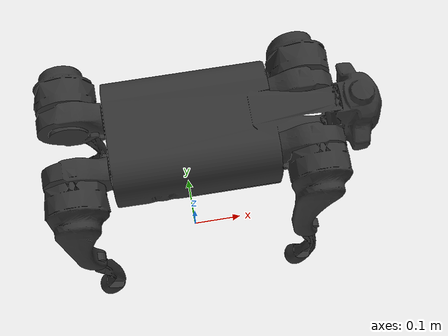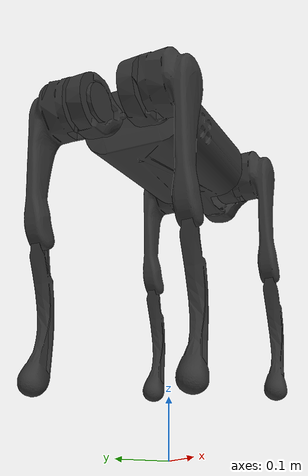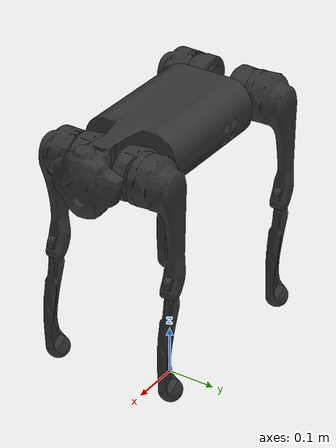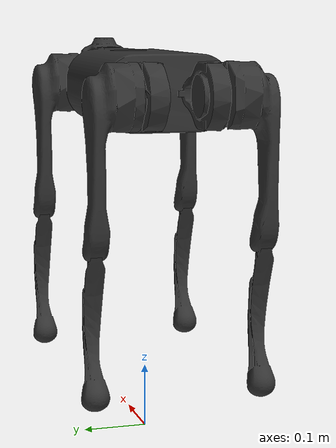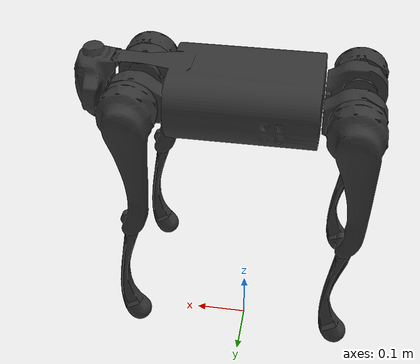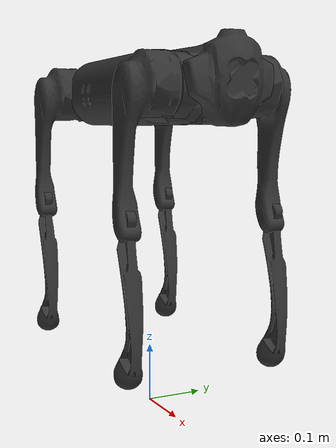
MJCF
<mujoco model="go1">
  <compiler angle="radian" autolimits="true"/>

  <option timestep="0.005" integrator="Euler" iterations="60">
    <flag eulerdamp="disable"/>
  </option>

  <custom>
    <numeric data="30" name="max_contact_points"/>
    <numeric data="12" name="max_geom_pairs"/>
  </custom>

  <default>
    <default class="go1">
      <geom condim="1"/>
      <joint axis="0 1 0" armature="0.005" damping="0.5"/>
      <default class="abduction">
        <joint axis="1 0 0" range="-0.863 0.863" frictionloss="0.3"/>
      </default>
      <default class="hip">
        <joint range="-0.686 4.501" frictionloss="0.3"/>
      </default>
      <default class="knee">
        <joint range="-2.818 -0.888" frictionloss="1.0"/>
        <position forcerange="-35.55 35.55"/>
      </default>
      <default class="visual">
        <geom type="mesh" contype="0" conaffinity="0" group="2" material="dark"/>
      </default>
      <default class="collision">
        <geom group="3" type="capsule"/>
        <default class="hip_left1">
          <geom size="0.046 0.02" pos="0 0.045 0" quat="1 1 0 0" type="cylinder"/>
        </default>
        <default class="hip_left2">
          <geom size="0.031 0.02" pos="0 0.065 0" quat="1 1 0 0" type="cylinder"/>
        </default>
        <default class="hip_left3">
          <geom size="0.046 0.02" quat="1 1 0 0" type="cylinder"/>
        </default>
        <default class="hip_right1">
          <geom size="0.046 0.02" pos="0 -0.045 0" quat="1 1 0 0" type="cylinder"/>
        </default>
        <default class="hip_right2">
          <geom size="0.031 0.02" pos="0 -0.065 0" quat="1 1 0 0" type="cylinder"/>
        </default>
        <default class="hip_right3">
          <geom size="0.046 0.02" quat="1 1 0 0" type="cylinder"/>
        </default>
        <default class="thigh1">
          <geom size="0.015" fromto="-0.02 0 0 -0.02 0 -0.16"/>
        </default>
        <default class="thigh2">
          <geom size="0.015" fromto="0 0 0 -0.02 0 -0.1"/>
        </default>
        <default class="thigh3">
          <geom size="0.015" fromto="-0.02 0 -0.16 0 0 -0.2"/>
        </default>
        <default class="calf1">
          <geom size="0.01" fromto="0 0 0 0.02 0 -0.13"/>
        </default>
        <default class="calf2">
          <geom size="0.01" fromto="0.02 0 -0.13 0 0 -0.2"/>
        </default>
        <default class="foot">
          <geom type="sphere" size="0.023" pos="0 0 -0.213" solimp="0.9 .99 0.001" priority="10" condim="3"/>
        </default>
      </default>
    </default>
  </default>

  <asset>
    <material name="dark" rgba="0.2 0.2 0.2 1"/>
    <mesh class="go1" file="../go1/assets/trunk.stl"/>
    <mesh class="go1" file="../go1/assets/hip.stl"/>
    <mesh class="go1" file="../go1/assets/thigh_mirror.stl"/>
    <mesh class="go1" file="../go1/assets/calf.stl"/>
    <mesh class="go1" file="../go1/assets/thigh.stl"/>
  </asset>

  <worldbody>
    <light name="spotlight" mode="targetbodycom" target="trunk" pos="3 0 4"/>
    <body name="trunk" pos="0 0 0.545" childclass="go1">
      <camera name="track" pos="0.846 -1.3 0.316" xyaxes="0.866 0.500 0.000 -0.171 0.296 0.940" mode="trackcom"/>
      <camera name="top" pos="-1 0 1" xyaxes="0 -1 0 0.7 0 0.7" mode="trackcom"/>
      <camera name="side" pos="0 -2 1" xyaxes="1 0 0 0 1 2" mode="trackcom"/>
      <camera name="back" pos="-2.4 0 0.8" target="trunk" mode="targetbody" trackposspeed="2" trackrotspeed="10"/>
      <site name="head" pos="0.3 0 0" rgba="1 0 0 1" size="0.02" group="5"/>
      <inertial pos="0.0223 0.002 -0.0005" quat="-0.00342088 0.705204 0.000106698 0.708996" mass="5.204"
        diaginertia="0.0716565 0.0630105 0.0168101"/>
      <freejoint/>
      <geom class="visual" mesh="trunk"/>
      <geom name='trunk' class="collision" quat="1 0 0 0" pos="0.24 0 0" size="0.05 0.05 0.05" type="box"/>
      <site name="imu" pos="-0.01592 -0.06659 -0.00617" group="5"/>
      <body name="FR_hip" pos="0.1881 -0.04675 0">
        <inertial pos="-0.0049166 0.00762615 -8.865e-05" quat="0.507341 0.514169 0.495027 0.482891" mass="0.68"
          diaginertia="0.000734064 0.000468438 0.000398719"/>
        <joint class="abduction" name="FR_hip_joint"/>
        <geom class="visual" mesh="hip" quat="1 0 0 0"/>
        <body name="FR_thigh" pos="0 -0.08 0">
          <inertial pos="-0.00304722 0.019315 -0.0305004" quat="0.65243 -0.0272313 0.0775126 0.753383" mass="1.009"
            diaginertia="0.00478717 0.00460903 0.000709268"/>
          <joint class="hip" name="FR_thigh_joint"/>
          <geom class="visual" mesh="thigh_mirror"/>
          <body name="FR_calf" pos="0 0 -0.213">
            <inertial pos="0.00429862 0.000976676 -0.146197" quat="0.691246 0.00357467 0.00511118 0.722592"
              mass="0.195862" diaginertia="0.00149767 0.00148468 3.58427e-05"/>
            <joint class="knee" name="FR_calf_joint"/>
            <geom class="visual" mesh="calf"/>
            <geom name="FR" class="foot"/>
            <site name="FR" pos="0 0 -0.213" type="sphere" size="0.023" group="5"/>
          </body>
        </body>
      </body>
      <body name="FL_hip" pos="0.1881 0.04675 0">
        <inertial pos="-0.0049166 -0.00762615 -8.865e-05" quat="0.482891 0.495027 0.514169 0.507341" mass="0.68"
          diaginertia="0.000734064 0.000468438 0.000398719"/>
        <joint class="abduction" name="FL_hip_joint"/>
        <geom class="visual" mesh="hip"/>
        <body name="FL_thigh" pos="0 0.08 0">
          <inertial pos="-0.00304722 -0.019315 -0.0305004" quat="0.753383 0.0775126 -0.0272313 0.65243" mass="1.009"
            diaginertia="0.00478717 0.00460903 0.000709268"/>
          <joint class="hip" name="FL_thigh_joint"/>
          <geom class="visual" mesh="thigh"/>
          <body name="FL_calf" pos="0 0 -0.213">
            <inertial pos="0.00429862 0.000976676 -0.146197" quat="0.691246 0.00357467 0.00511118 0.722592"
              mass="0.195862" diaginertia="0.00149767 0.00148468 3.58427e-05"/>
            <joint class="knee" name="FL_calf_joint"/>
            <geom class="visual" mesh="calf"/>
            <geom name="FL" class="foot"/>
            <site name="FL" pos="0 0 -0.213" type="sphere" size="0.023" group="5"/>
          </body>
        </body>
      </body>
      <body name="RR_hip" pos="-0.1881 -0.04675 0">
        <inertial pos="0.0049166 0.00762615 -8.865e-05" quat="0.495027 0.482891 0.507341 0.514169" mass="0.68"
          diaginertia="0.000734064 0.000468438 0.000398719"/>
        <joint class="abduction" name="RR_hip_joint"/>
        <geom class="visual" quat="0 0 0 -1" mesh="hip"/>
        <body name="RR_thigh" pos="0 -0.08 0">
          <inertial pos="-0.00304722 0.019315 -0.0305004" quat="0.65243 -0.0272313 0.0775126 0.753383" mass="1.009"
            diaginertia="0.00478717 0.00460903 0.000709268"/>
          <joint class="hip" name="RR_thigh_joint"/>
          <geom class="visual" mesh="thigh_mirror"/>
          <body name="RR_calf" pos="0 0 -0.213">
            <inertial pos="0.00429862 0.000976676 -0.146197" quat="0.691246 0.00357467 0.00511118 0.722592"
              mass="0.195862" diaginertia="0.00149767 0.00148468 3.58427e-05"/>
            <joint class="knee" name="RR_calf_joint"/>
            <geom class="visual" mesh="calf"/>
            <geom name="RR" class="foot"/>
            <site name="RR" pos="0 0 -0.213" type="sphere" size="0.023" group="5"/>
          </body>
        </body>
      </body>
      <body name="RL_hip" pos="-0.1881 0.04675 0">
        <inertial pos="0.0049166 -0.00762615 -8.865e-05" quat="0.514169 0.507341 0.482891 0.495027" mass="0.68"
          diaginertia="0.000734064 0.000468438 0.000398719"/>
        <joint class="abduction" name="RL_hip_joint"/>
        <geom class="visual" quat="0 0 1 0" mesh="hip"/>
        <body name="RL_thigh" pos="0 0.08 0">
          <inertial pos="-0.00304722 -0.019315 -0.0305004" quat="0.753383 0.0775126 -0.0272313 0.65243" mass="1.009"
            diaginertia="0.00478717 0.00460903 0.000709268"/>
          <joint class="hip" name="RL_thigh_joint"/>
          <geom class="visual" mesh="thigh"/>
          <body name="RL_calf" pos="0 0 -0.213">
            <inertial pos="0.00429862 0.000976676 -0.146197" quat="0.691246 0.00357467 0.00511118 0.722592"
              mass="0.195862" diaginertia="0.00149767 0.00148468 3.58427e-05"/>
            <joint class="knee" name="RL_calf_joint"/>
            <geom class="visual" mesh="calf"/>
            <geom name="RL" class="foot"/>
            <site name="RL" pos="0 0 -0.213" type="sphere" size="0.023" group="5"/>
          </body>
        </body>
      </body>
    </body>
  </worldbody>

  <actuator>
    <motor class="abduction" name="FR_hip" joint="FR_hip_joint"  ctrllimited="true" ctrlrange="-23.7 23.7"/>
    <motor class="hip" name="FR_thigh" joint="FR_thigh_joint"  ctrllimited="true" ctrlrange="-23.7 23.7"/>
    <motor class="knee" name="FR_calf" joint="FR_calf_joint"  ctrllimited="true" ctrlrange="-23.7 23.7"/>
    <motor class="abduction" name="FL_hip" joint="FL_hip_joint"  ctrllimited="true" ctrlrange="-23.7 23.7"/>
    <motor class="hip" name="FL_thigh" joint="FL_thigh_joint"  ctrllimited="true" ctrlrange="-23.7 23.7"/>
    <motor class="knee" name="FL_calf" joint="FL_calf_joint"  ctrllimited="true" ctrlrange="-23.7 23.7"/>
    <motor class="abduction" name="RR_hip" joint="RR_hip_joint"  ctrllimited="true" ctrlrange="-23.7 23.7"/>
    <motor class="hip" name="RR_thigh" joint="RR_thigh_joint"  ctrllimited="true" ctrlrange="-23.7 23.7"/>
    <motor class="knee" name="RR_calf" joint="RR_calf_joint"  ctrllimited="true" ctrlrange="-23.7 23.7"/>
    <motor class="abduction" name="RL_hip" joint="RL_hip_joint"  ctrllimited="true" ctrlrange="-23.7 23.7"/>
    <motor class="hip" name="RL_thigh" joint="RL_thigh_joint"  ctrllimited="true" ctrlrange="-23.7 23.7"/>
    <motor class="knee" name="RL_calf" joint="RL_calf_joint"  ctrllimited="true" ctrlrange="-23.7 23.7"/>
  </actuator>

  <sensor>
    <gyro site="imu" name="gyro"/>
    <velocimeter site="imu" name="local_linvel"/>
    <framepos objtype="site" objname="imu" name="position"/>
    <framelinvel objtype="site" objname="imu" name="global_linvel"/>
    <frameangvel objtype="site" objname="imu" name="global_angvel"/>
    <framequat objtype="site" objname="imu" name="orientation"/>
    <framelinvel objtype="site" objname="FR" name="FR_global_linvel"/>
    <framelinvel objtype="site" objname="FL" name="FL_global_linvel"/>
    <framelinvel objtype="site" objname="RR" name="RR_global_linvel"/>
    <framelinvel objtype="site" objname="RL" name="RL_global_linvel"/>
    <framepos objtype="site" objname="FR" name="FR_pos" reftype="site" refname="imu"/>
    <framepos objtype="site" objname="FL" name="FL_pos" reftype="site" refname="imu"/>
    <framepos objtype="site" objname="RR" name="RR_pos" reftype="site" refname="imu"/>
    <framepos objtype="site" objname="RL" name="RL_pos" reftype="site" refname="imu"/>
    <framepos objtype="site" objname="head" name="head_pos"/>
  </sensor>
</mujoco>
